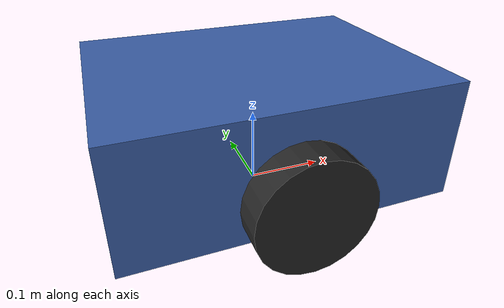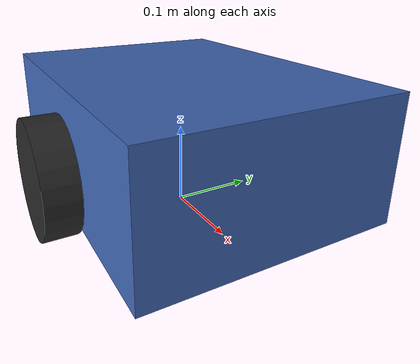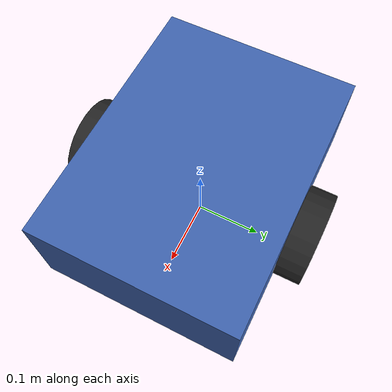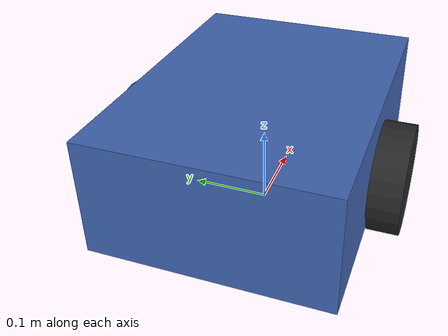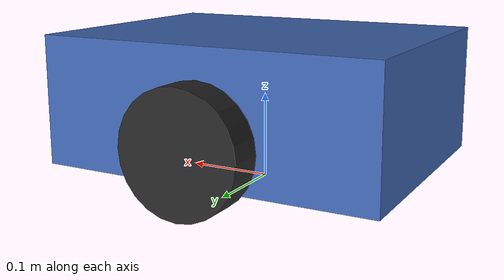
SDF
<?xml version="1.0"?>
<sdf version="1.9">
  <model name="test_robot">
    <pose>0 0 0.1 0 0 0</pose>

    <!-- Chassis -->
    <link name="base_link">
      <inertial>
        <mass>5.0</mass>
        <inertia>
          <ixx>0.05</ixx><iyy>0.08</iyy><izz>0.10</izz>
          <ixy>0</ixy><ixz>0</ixz><iyz>0</iyz>
        </inertia>
      </inertial>
      <collision name="chassis_collision">
        <geometry><box><size>0.4 0.3 0.15</size></box></geometry>
      </collision>
      <visual name="chassis_visual">
        <geometry><box><size>0.4 0.3 0.15</size></box></geometry>
        <material>
          <ambient>0.2 0.3 0.5 1</ambient>
          <diffuse>0.25 0.4 0.7 1</diffuse>
        </material>
      </visual>

      <!-- The model's input. 640x480 at 90 degrees horizontal is a
           placeholder: it is not aligned with the checkpoint's training
           camera, which is a separate experiment. -->
      <sensor name="front_camera" type="camera">
        <pose>0.21 0 0.08 0 0 0</pose>
        <camera>
          <horizontal_fov>1.5708</horizontal_fov>
          <image><width>640</width><height>480</height><format>R8G8B8</format></image>
          <clip><near>0.05</near><far>50</far></clip>
        </camera>
        <always_on>1</always_on>
        <update_rate>30</update_rate>
        <visualize>false</visualize>
        <topic>/front_camera</topic>
      </sensor>
    </link>

    <link name="chase_camera_link">
      <pose>-1.8 0 1.2 0 0.28 0</pose>
      <inertial>
        <mass>0.01</mass>
        <inertia>
          <ixx>1e-5</ixx><iyy>1e-5</iyy><izz>1e-5</izz>
          <ixy>0</ixy><ixz>0</ixz><iyz>0</iyz>
        </inertia>
      </inertial>
      <sensor name="chase_camera" type="camera">
        <camera>
          <horizontal_fov>1.4</horizontal_fov>
          <image><width>960</width><height>540</height><format>R8G8B8</format></image>
          <clip><near>0.1</near><far>100</far></clip>
        </camera>
        <always_on>1</always_on>
        <update_rate>20</update_rate>
        <visualize>false</visualize>
        <topic>/chase_camera</topic>
      </sensor>
    </link>
    <joint name="chase_camera_joint" type="fixed">
      <parent>base_link</parent>
      <child>chase_camera_link</child>
    </joint>

    <!-- Wheels -->
    <link name="left_wheel">
      <pose>0 0.17 -0.03 -1.5708 0 0</pose>
      <inertial>
        <mass>0.5</mass>
        <inertia>
          <ixx>0.001</ixx><iyy>0.001</iyy><izz>0.001</izz>
          <ixy>0</ixy><ixz>0</ixz><iyz>0</iyz>
        </inertia>
      </inertial>
      <collision name="left_wheel_collision">
        <geometry><cylinder><radius>0.07</radius><length>0.04</length></cylinder></geometry>
        <surface><friction><ode><mu>1.0</mu><mu2>1.0</mu2></ode></friction></surface>
      </collision>
      <visual name="left_wheel_visual">
        <geometry><cylinder><radius>0.07</radius><length>0.04</length></cylinder></geometry>
        <material><ambient>0.1 0.1 0.1 1</ambient><diffuse>0.15 0.15 0.15 1</diffuse></material>
      </visual>
    </link>
    <joint name="left_wheel_joint" type="revolute">
      <parent>base_link</parent>
      <child>left_wheel</child>
      <axis><xyz>0 0 1</xyz><limit><lower>-1e16</lower><upper>1e16</upper></limit></axis>
    </joint>

    <link name="right_wheel">
      <pose>0 -0.17 -0.03 -1.5708 0 0</pose>
      <inertial>
        <mass>0.5</mass>
        <inertia>
          <ixx>0.001</ixx><iyy>0.001</iyy><izz>0.001</izz>
          <ixy>0</ixy><ixz>0</ixz><iyz>0</iyz>
        </inertia>
      </inertial>
      <collision name="right_wheel_collision">
        <geometry><cylinder><radius>0.07</radius><length>0.04</length></cylinder></geometry>
        <surface><friction><ode><mu>1.0</mu><mu2>1.0</mu2></ode></friction></surface>
      </collision>
      <visual name="right_wheel_visual">
        <geometry><cylinder><radius>0.07</radius><length>0.04</length></cylinder></geometry>
        <material><ambient>0.1 0.1 0.1 1</ambient><diffuse>0.15 0.15 0.15 1</diffuse></material>
      </visual>
    </link>
    <joint name="right_wheel_joint" type="revolute">
      <parent>base_link</parent>
      <child>right_wheel</child>
      <axis><xyz>0 0 1</xyz><limit><lower>-1e16</lower><upper>1e16</upper></limit></axis>
    </joint>

    <!-- Free-spinning support so the chassis does not tip. -->
    <link name="caster">
      <pose>-0.15 0 -0.06 0 0 0</pose>
      <inertial>
        <mass>0.1</mass>
        <inertia>
          <ixx>1e-4</ixx><iyy>1e-4</iyy><izz>1e-4</izz>
          <ixy>0</ixy><ixz>0</ixz><iyz>0</iyz>
        </inertia>
      </inertial>
      <collision name="caster_collision">
        <geometry><sphere><radius>0.04</radius></sphere></geometry>
        <surface><friction><ode><mu>0.0</mu><mu2>0.0</mu2></ode></friction></surface>
      </collision>
      <visual name="caster_visual">
        <geometry><sphere><radius>0.04</radius></sphere></geometry>
      </visual>
    </link>
    <joint name="caster_joint" type="ball">
      <parent>base_link</parent>
      <child>caster</child>
    </joint>

    <plugin filename="gz-sim-diff-drive-system" name="gz::sim::systems::DiffDrive">
      <left_joint>left_wheel_joint</left_joint>
      <right_joint>right_wheel_joint</right_joint>
      <wheel_separation>0.34</wheel_separation>
      <wheel_radius>0.07</wheel_radius>
      <max_linear_velocity>4.5</max_linear_velocity>
      <max_angular_velocity>3.0</max_angular_velocity>
      <max_linear_acceleration>6.0</max_linear_acceleration>
      <max_angular_acceleration>5.0</max_angular_acceleration>
      <topic>/model/test_robot/cmd_vel</topic>
      <odom_topic>/model/test_robot/odometry</odom_topic>
      <frame_id>odom</frame_id>
      <child_frame_id>base_link</child_frame_id>
      <odom_publish_frequency>30</odom_publish_frequency>
    </plugin>

    <plugin filename="gz-sim-pose-publisher-system"
            name="gz::sim::systems::PosePublisher">
      <publish_link_pose>true</publish_link_pose>
      <publish_model_pose>true</publish_model_pose>
      <publish_nested_model_pose>false</publish_nested_model_pose>
      <use_pose_vector_msg>true</use_pose_vector_msg>
      <static_publisher>false</static_publisher>
      <update_frequency>30</update_frequency>
    </plugin>
  </model>
</sdf>
